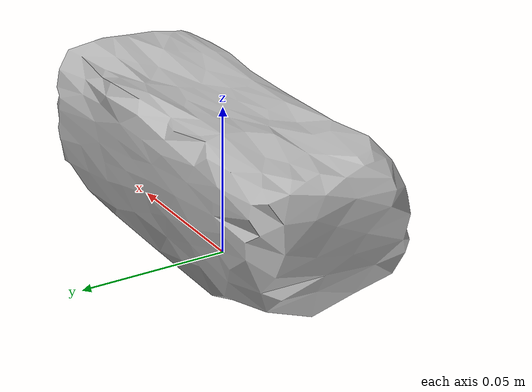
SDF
<?xml version="1.0" ?>
<sdf version="1.4">
  <model name="eraser">
    <link name="eraser_link">
      <inertial>
        <pose>0 0 0 0 0 0</pose>
        <mass>0.1</mass>
      </inertial>

      <visual name="eraser_visual">
        <pose>0 0 0 0 0 0</pose>
        <material>
          <script>
            <uri>model://eraser/materials/scripts</uri>
            <uri>model://eraser/materials/textures</uri>
            <name>eraser</name>
          </script>
        </material>
        <geometry>
          <mesh>
            <uri>model://eraser/meshes/eraser_aligned.dae</uri>
          </mesh>
        </geometry>
      </visual>

      <collision name="eraser_collision">
        <pose>0.0 0.0 0.025 0 0 0</pose>
        <geometry>
          <box>
            <size>0.135 0.06 0.05</size>
          </box>
        </geometry>
      </collision>

    </link>
  </model>
</sdf>
